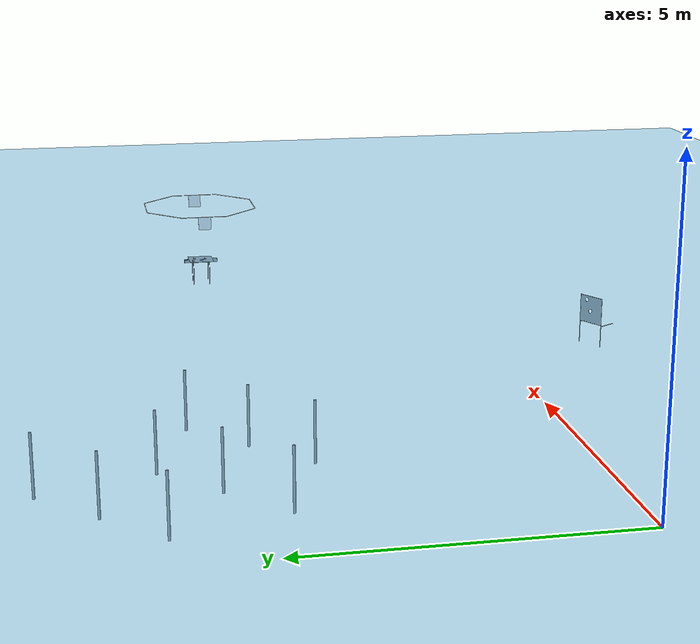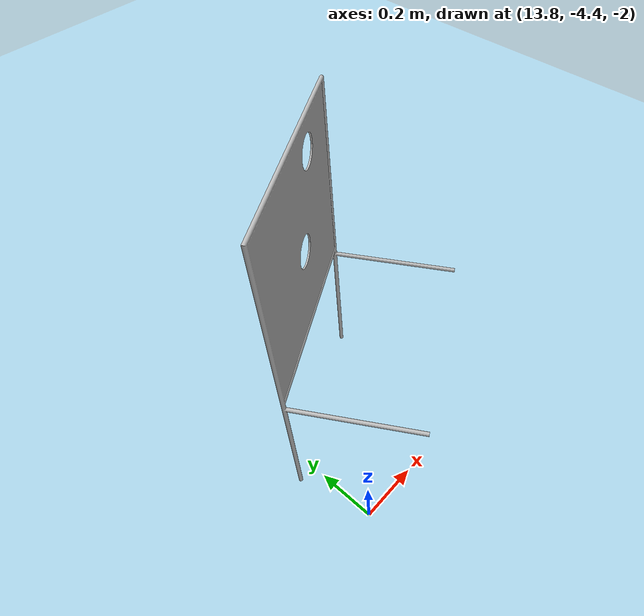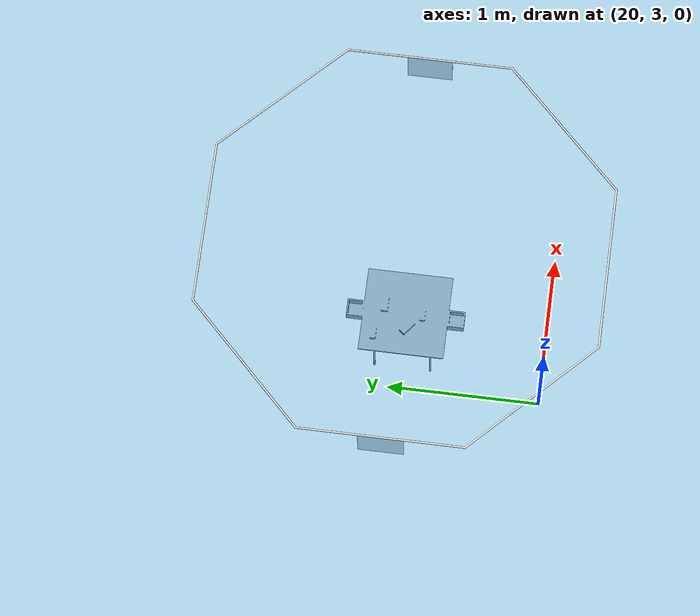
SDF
<sdf version="1.6">
 <world name="uuv_world">
  <gravity>0 0 0</gravity>
  <physics name="1ms" type="ode">
   <max_step_size>0.005</max_step_size>
   <real_time_factor>1.0</real_time_factor>
  </physics>
  <include><uri>https://fuel.gazebosim.org/1.0/openrobotics/models/sun</uri></include>
  <model name="water_volume">
   <static>true</static>
   <pose>0 0 -5 0 0 0</pose>
   <link name="link">
    <visual name="visual">
     <geometry><box><size>100 100 10</size></box></geometry>
     <material>
      <ambient>0 0.5 0.5 0.3</ambient>
      <diffuse>0 0.5 0.8 0.3</diffuse>
      <specular>1 1 1 1</specular>
     </material>
    </visual>
   </link>
  </model>
  <scene>
   <ambient>0.2 0.2 0.2 0.3</ambient>
   <background>0 0.1 0.2 0.3</background>
   <shadows>true</shadows>
   <fog><color>0 0.2 0.4 0.3</color><type>linear</type><start>0.1</start><end>30</end></fog>
  </scene>
  <model name="mesa">
   <static>true</static>
   <link name="link">
    <collision name="collision">
     <geometry>
      <mesh><uri>file:///uuv_description/models/ocean_cleanup_table/meshes/mesa.obj</uri></mesh>
     </geometry>
    </collision>
    <visual name="visual">
     <geometry>
      <mesh><uri>file:///uuv_description/models/ocean_cleanup_table/meshes/mesa.obj</uri></mesh>
     </geometry>
    </visual>
    <inertial>
     <mass>1</mass>
     <inertia><ixx>1</ixx><ixy>0</ixy><ixz>0</ixz><iyy>1</iyy><iyz>0</iyz><izz>1</izz></inertia>
    </inertial>
   </link>
   <pose>21 4 -2 1.57 0 0</pose>
  </model>
  <model name="octagon">
   <static>true</static>
   <link name="link">
    <collision name="collision">
     <geometry>
      <mesh><uri>file:///uuv_description/models/ocean_cleanup_octagon/meshes/octagon.obj</uri></mesh>
     </geometry>
    </collision>
    <visual name="visual">
     <geometry>
      <mesh><uri>file:///uuv_description/models/ocean_cleanup_octagon/meshes/octagon.obj</uri></mesh>
     </geometry>
    </visual>
    <inertial>
     <mass>1</mass>
     <inertia><ixx>1</ixx><ixy>0</ixy><ixz>0</ixz><iyy>1</iyy><iyz>0</iyz><izz>1</izz></inertia>
    </inertial>
   </link>
   <pose>21 4 0 1.57 0 0</pose>
  </model>
  <model name="slalom">
   <static>true</static>
   <link name="link">
    <collision name="collision">
     <geometry><mesh><uri>file:///uuv_description/models/slalom/meshes/slalom.obj</uri></mesh></geometry>
    </collision>
    <visual name="visual">
     <geometry><mesh><uri>file:///uuv_description/models/slalom/meshes/slalom.obj</uri></mesh></geometry>
    </visual>
    <inertial>
     <mass>1</mass>
     <inertia><ixx>1</ixx><ixy>0</ixy><ixz>0</ixz><iyy>1</iyy><iyz>0</iyz><izz>1</izz></inertia>
    </inertial>
   </link>
   <pose>7 5 -2 1.57 0 0.785</pose>
  </model>
  <model name="tagging">
   <static>true</static>
   <link name="link">
    <collision name="collision">
     <geometry><mesh><uri>file:///uuv_description/models/tagging/meshes/tagging.obj</uri></mesh></geometry>
    </collision>
    <visual name="visual">
     <geometry><mesh><uri>file:///uuv_description/models/tagging/meshes/tagging.obj</uri></mesh></geometry>
    </visual>
    <inertial>
     <mass>1</mass>
     <inertia><ixx>1</ixx><ixy>0</ixy><ixz>0</ixz><iyy>1</iyy><iyz>0</iyz><izz>1</izz></inertia>
    </inertial>
   </link>
   <pose>14 -4 -2 1.57 0 0.524</pose>
  </model>
  <plugin filename="ignition-gazebo-physics-system" name="ignition::gazebo::systems::Physics"/>
  <plugin filename="ignition-gazebo-user-commands-system" name="ignition::gazebo::systems::UserCommands"/>
  <plugin filename="ignition-gazebo-scene-broadcaster-system" name="ignition::gazebo::systems::SceneBroadcaster"/>
  <plugin filename="ignition-gazebo-sensors-system" name="ignition::gazebo::systems::Sensors">
   <render_engine>ogre2</render_engine>
  </plugin>
 </world>
</sdf>
